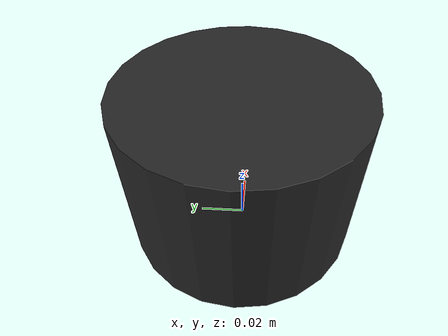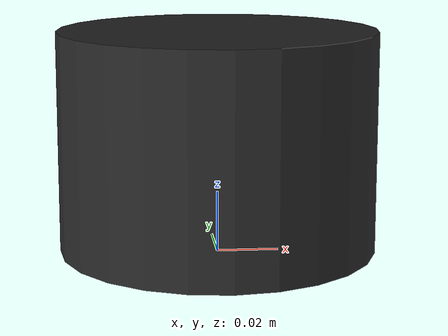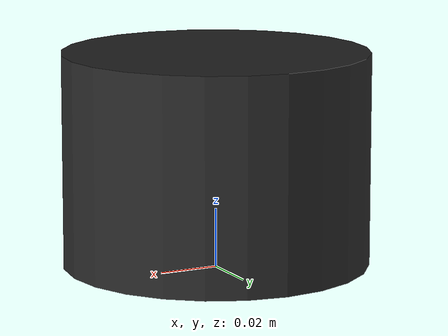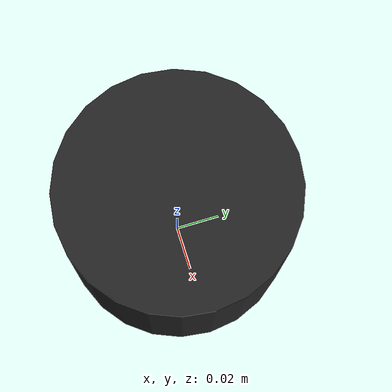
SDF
<?xml version="1.0"?>
<sdf version="1.9">
  <model name="lidar_3d_v1">
    <link name="link">
      <pose>0 0 0 0 0 0</pose>
      <inertial>
        <pose>0 0 0.0375 0 0 0</pose>
        <mass>0.83</mass>
        <inertia>
          <ixx>0.000637</ixx>
          <ixy>0</ixy>
          <ixz>0</ixz>
          <iyy>0.000637</iyy>
          <iyz>0</iyz>
          <izz>0.000932</izz>
        </inertia>
      </inertial>
      <collision name="collision">
        <pose>0 0 0.0375 0 0 0</pose>
        <geometry>
          <cylinder>
            <radius>0.0516</radius>
            <length>0.0717</length>
          </cylinder>
        </geometry>
      </collision>
      <visual name="visual">
        <pose>0 0 0.0375 0 0 0</pose>
        <geometry>
          <cylinder>
            <radius>0.0516</radius>
            <length>0.0717</length>
          </cylinder>
        </geometry>
        <material>
          <ambient>0.1 0.1 0.1 1</ambient>
          <diffuse>0.15 0.15 0.15 1</diffuse>
          <specular>0.2 0.2 0.2 1</specular>
        </material>
      </visual>
      <sensor name="lidar_3d_v1" type="gpu_lidar">
        <gz_frame_id>link</gz_frame_id>
        <pose>0 0 0.0375 0 0 0</pose>
        <ray>
          <scan>
            <horizontal>
              <samples>1024</samples>
              <resolution>1</resolution>
              <min_angle>-3.141593</min_angle>
              <max_angle>3.141593</max_angle>
            </horizontal>
            <vertical>
              <samples>16</samples>
              <resolution>1</resolution>
              <min_angle>-0.523599</min_angle>
              <max_angle>0.523599</max_angle>
            </vertical>
          </scan>
          <range>
            <min>0.1</min>
            <max>100.0</max>
            <resolution>0.01</resolution>
          </range>
          <noise>
            <type>gaussian</type>
            <mean>0.0</mean>
            <stddev>0.01</stddev>
          </noise>
        </ray>
        <always_on>1</always_on>
        <update_rate>10</update_rate>
        <visualize>false</visualize>
      </sensor>
    </link>
  </model>
</sdf>
